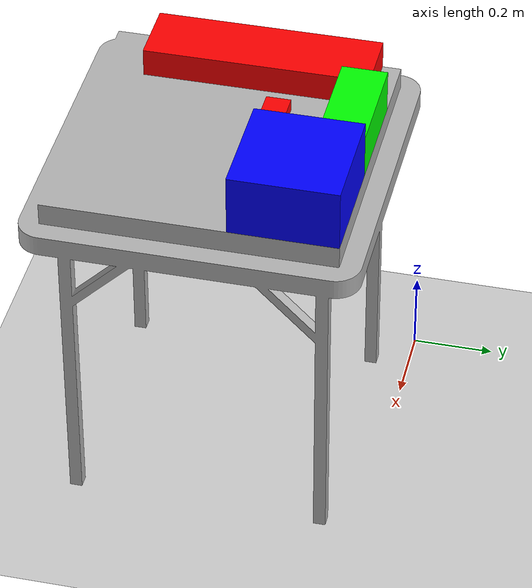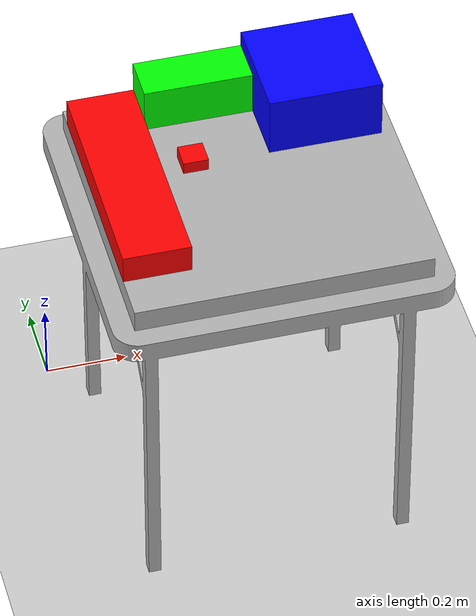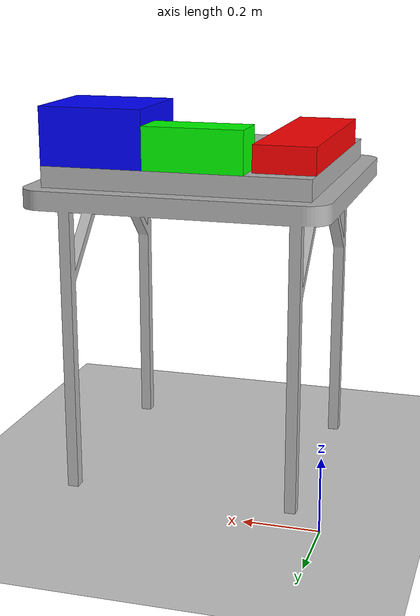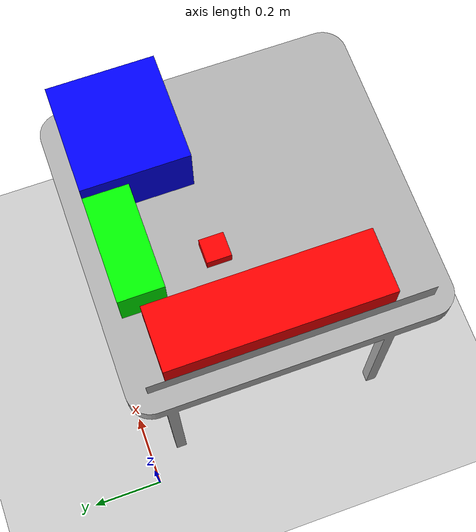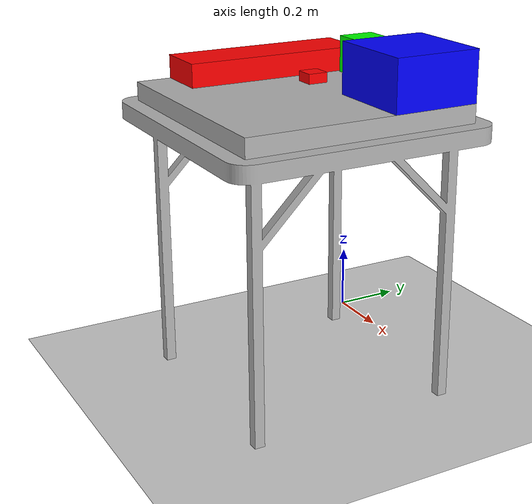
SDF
<?xml version="1.0" ?>
<sdf version="1.6">
  <world name="ur3e_table_world">
    <light type="directional" name="sun">
       <cast_shadows>true</cast_shadows>
       <pose>0 0 10 0 0 0</pose>
       <diffuse>0.8 0.8 0.8 1</diffuse>
       <specular>0.2 0.2 0.2 1</specular>
       <attenuation>
            <range>1000</range>
            <constant>0.3</constant>
            <linear>0.01</linear>
            <quadratic>0.001</quadratic>
        </attenuation>
        <direction>-0.5 0.1 -0.9</direction>
    </light>

    <model name="ground_plane">
      <static>true</static>
      <link name="link">
        <collision name="collision">
          <geometry>
            <plane>
              <normal>0 0 1</normal>
            </plane>
          </geometry>
        </collision>
        <visual name="visual">
          <geometry>
            <plane>
              <normal>0 0 1</normal>
              <size>100 100</size>
            </plane>
          </geometry>
          <material>
            <ambient>0.8 0.8 0.8 1</ambient>
            <diffuse>0.8 0.8 0.8 1</diffuse>
            <specular>0.8 0.8 0.8 1</specular>
          </material>
        </visual>
      </link>
    </model>

    <!-- Your Class Table -->
    <include>
      <uri>model://class_table</uri>
      <pose>0 0 0 0 0 0</pose>
    </include>

    <!-- SINGLE CUBE in front of robot -->
    <!-- Robot at (0.4, -0.68, 0.89) -->
    <!-- Cube at (0.3, -0.5, Z) where Z = table height + half cube height -->
    <!-- Table height = 0.89, Cube height = 0.06, so center at 0.89 + 0.03 = 0.92 -->
    <!-- But if sinking, increase to 0.93-0.95 -->
    <model name="test_cube_999">
        <pose>0.3 -0.3 0.89 0 0 0</pose>  <!-- Adjusted Z to 0.95 (above table) -->
        <link name="link">
        <inertial>
            <mass>0.2</mass>
            <inertia>
            <ixx>0.166667</ixx>
            <ixy>0</ixy>
            <ixz>0</ixz>
            <iyy>0.166667</iyy>
            <iyz>0</iyz>
            <izz>0.166667</izz>
            </inertia>
        </inertial>
        <visual name="visual">
            <geometry>
            <box>
                <size>0.06 0.06 0.06</size>
            </box>
            </geometry>
            <material>
                <ambient>1 0 0 1</ambient>
                <diffuse>1 0 0 1</diffuse>
                <specular>1 0 0 1</specular>
            </material>
        </visual>
        <collision name="collision">
            <pose frame="">0 0 0 0 0 0</pose>
            <geometry>
            <box>
                <size>0.06 0.06 0.06</size>
            </box>
            </geometry>
            <surface>
                <contact>
                    <ode>
                        <kp>1e+5</kp> <kd>1</kd>
                    </ode>
                </contact>
                <friction>
                    <ode>
                        <mu>100000.0</mu>
                        <mu2>100000.0</mu2>
                    </ode>
                </friction>
            </surface>
        </collision>
        </link>
    </model>

    <plugin name="gazebo_link_attacher" filename="libgazebo_link_attacher.so"/>
  </world>
</sdf>

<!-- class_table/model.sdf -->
<sdf version="1.9">
  <model name="class_table">
    <static>true</static>

    <link name="table_link">
      <pose>0 0 0 1.5708 0 0</pose>
      <visual name="table_visual">
        <geometry>
          <mesh>
            <uri>model://class_table/meshes/table.STL</uri>
            <scale>0.001 0.001 0.001</scale>
          </mesh>
        </geometry>
        <material><ambient>0.7 0.7 0.7 1</ambient></material>
      </visual>
      <collision name="table_collision">
        <geometry>
          <mesh>
            <uri>model://class_table/meshes/table.STL</uri>
            <scale>0.001 0.001 0.001</scale>
          </mesh>
        </geometry>
      </collision>
    </link>

    <link name="box1_link">
      <pose>0.05 -0.645 0.89 0 0 0</pose>
      <visual name="box1_visual">
        <geometry>
          <mesh>
            <uri>model://class_table/meshes/BOX1.STL</uri>
            <scale>0.001 0.001 0.001</scale>
          </mesh>
        </geometry>
        <material><diffuse>1 0 0 1</diffuse></material>
      </visual>
      <collision name="box1_collision">
        <geometry>
          <mesh>
            <uri>model://class_table/meshes/BOX1.STL</uri>
            <scale>0.001 0.001 0.001</scale>
          </mesh>
        </geometry>
      </collision>
    </link>

    <joint name="joint_table_box1" type="fixed">
      <parent>table_link</parent>
      <child>box1_link</child>
    </joint>

    <link name="box2_link">
      <pose>0.22 -0.05 0.89 0 0 -1.5708</pose>
      <visual name="box2_visual">
        <geometry>
          <mesh>
            <uri>model://class_table/meshes/BOX2.STL</uri>
            <scale>0.001 0.001 0.001</scale>
          </mesh>
        </geometry>
        <material><diffuse>0 1 0 1</diffuse></material>
      </visual>
      <collision name="box2_collision">
        <geometry>
          <mesh>
            <uri>model://class_table/meshes/BOX2.STL</uri>
            <scale>0.001 0.001 0.001</scale>
          </mesh>
        </geometry>
      </collision>
    </link>

    <joint name="joint_table_box2" type="fixed">
      <parent>table_link</parent>
      <child>box2_link</child>
    </joint>

    <link name="box3_link">
      <pose>0.48 -0.31 0.89 0 0 0</pose>
      <visual name="box3_visual">
        <geometry>
          <mesh>
            <uri>model://class_table/meshes/BOX3.STL</uri>
            <scale>0.001 0.001 0.001</scale>
          </mesh>
        </geometry>
        <material><diffuse>0 0 1 1</diffuse></material>
      </visual>
      <collision name="box3_collision">
        <geometry>
          <mesh>
            <uri>model://class_table/meshes/BOX3.STL</uri>
            <scale>0.001 0.001 0.001</scale>
          </mesh>
        </geometry>
      </collision>
    </link>

    <joint name="joint_table_box3" type="fixed">
      <parent>table_link</parent>
      <child>box3_link</child>
    </joint>

  </model>
</sdf>
